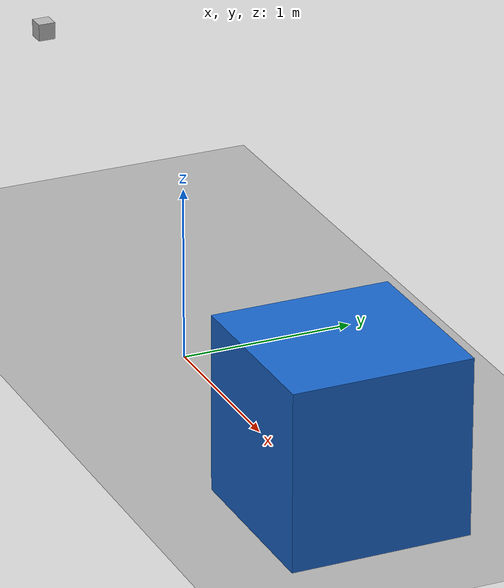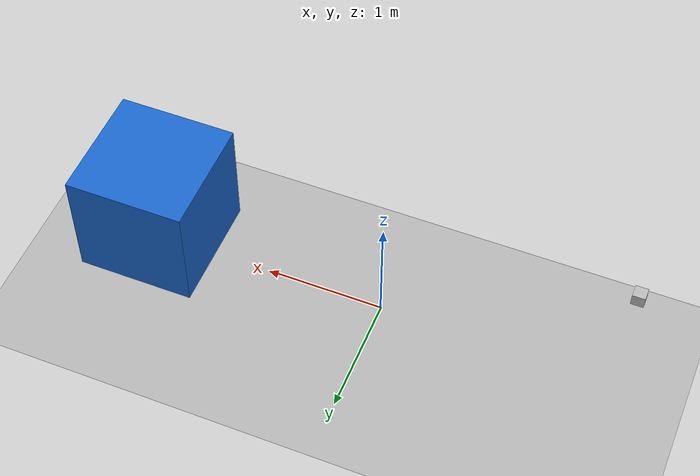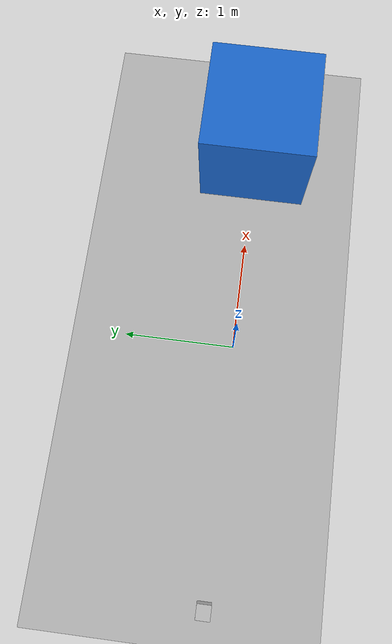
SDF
<?xml version="1.0" ?>
<!-- Minimal world to test whether gz-sim can render camera + lidar under WSL.
     No Fuel downloads: just a ground plane, a box, a camera, and a gpu_lidar. -->
<sdf version="1.8">
  <world name="probe">
    <plugin filename="gz-sim-physics-system" name="gz::sim::systems::Physics"/>
    <plugin filename="gz-sim-sensors-system" name="gz::sim::systems::Sensors">
      <render_engine>ogre2</render_engine>
    </plugin>
    <plugin filename="gz-sim-user-commands-system" name="gz::sim::systems::UserCommands"/>
    <plugin filename="gz-sim-scene-broadcaster-system" name="gz::sim::systems::SceneBroadcaster"/>

    <light type="directional" name="sun">
      <cast_shadows>true</cast_shadows>
      <pose>0 0 10 0 0 0</pose>
      <diffuse>0.9 0.9 0.9 1</diffuse>
      <specular>0.2 0.2 0.2 1</specular>
      <direction>-0.5 0.1 -0.9</direction>
    </light>

    <model name="ground_plane">
      <static>true</static>
      <link name="link">
        <collision name="c"><geometry><plane><normal>0 0 1</normal><size>50 50</size></plane></geometry></collision>
        <visual name="v"><geometry><plane><normal>0 0 1</normal><size>50 50</size></plane></geometry>
          <material><ambient>0.7 0.7 0.7 1</ambient><diffuse>0.7 0.7 0.7 1</diffuse></material></visual>
      </link>
    </model>

    <model name="box">
      <pose>2 0 0.5 0 0 0</pose>
      <link name="link">
        <visual name="v"><geometry><box><size>1 1 1</size></box></geometry>
          <material><ambient>0.1 0.4 0.8 1</ambient><diffuse>0.1 0.4 0.8 1</diffuse></material></visual>
        <collision name="c"><geometry><box><size>1 1 1</size></box></geometry></collision>
        <inertial><mass>1</mass><inertia><ixx>1</ixx><iyy>1</iyy><izz>1</izz><ixy>0</ixy><ixz>0</ixz><iyz>0</iyz></inertia></inertial>
      </link>
    </model>

    <model name="sensor_rig">
      <static>true</static>
      <pose>-2 0 1.2 0 0 0</pose>
      <link name="link">
        <visual name="v"><geometry><box><size>0.1 0.1 0.1</size></box></geometry></visual>
        <sensor name="camera" type="camera">
          <camera>
            <horizontal_fov>1.047</horizontal_fov>
            <image><width>320</width><height>240</height></image>
            <clip><near>0.1</near><far>50</far></clip>
          </camera>
          <always_on>1</always_on>
          <update_rate>30</update_rate>
          <topic>probe_camera</topic>
        </sensor>
        <sensor name="lidar" type="gpu_lidar">
          <pose>0 0 0 0 0 0</pose>
          <lidar>
            <scan>
              <horizontal><samples>180</samples><resolution>1</resolution><min_angle>-1.5</min_angle><max_angle>1.5</max_angle></horizontal>
              <vertical><samples>16</samples><resolution>1</resolution><min_angle>-0.26</min_angle><max_angle>0.26</max_angle></vertical>
            </scan>
            <range><min>0.1</min><max>50</max><resolution>0.01</resolution></range>
          </lidar>
          <always_on>1</always_on>
          <update_rate>10</update_rate>
          <topic>probe_lidar</topic>
        </sensor>
      </link>
    </model>
  </world>
</sdf>
